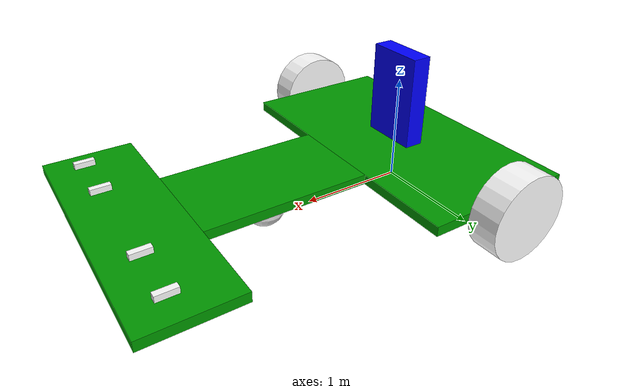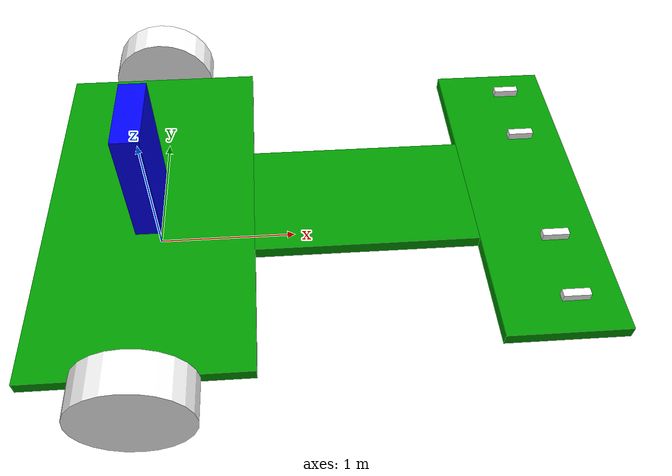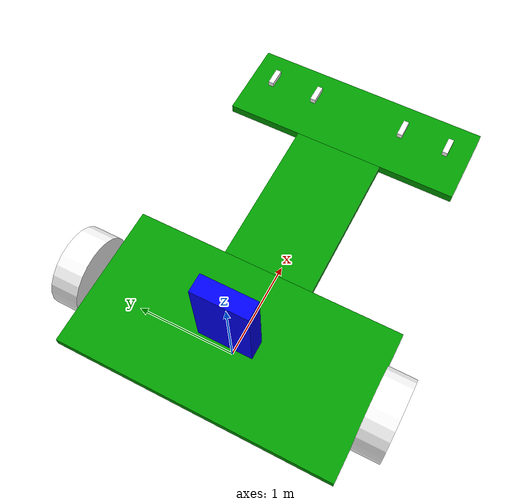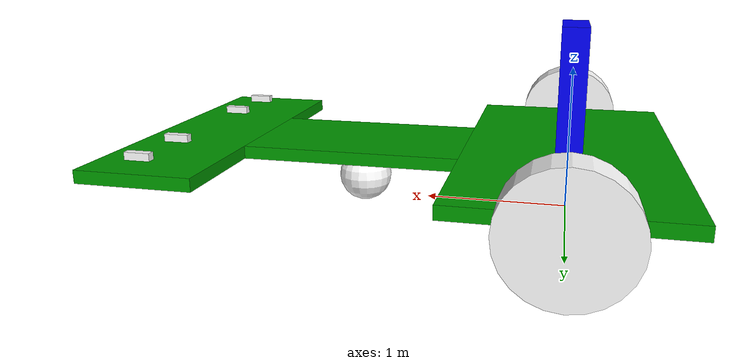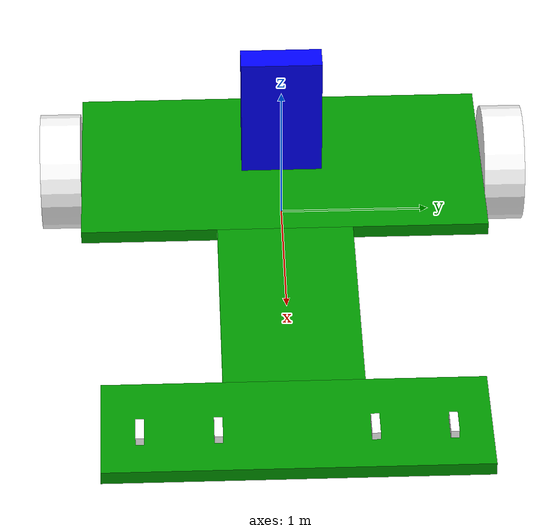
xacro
<?xml version="1.0"?>
<robot name="FLF" xmlns:xacro="http://www.ros.org/wiki/xacro">
<!-- Scaling Factor -->
<xacro:property name="scale" value="0.18"/>
<material name="grey">
<color rgba="0.7 0.7 0.7 1"/>
</material>
<material name="green">
<color rgba="0 0.6 0.0 1"/>
</material>
<material name="white">
<color rgba="1 1 1 1"/>
</material>

<!-- Base Footprint Link -->
<link name="base_footprint" />
<!-- Base Link -->
<link name="base_link">
<visual>
<geometry>
<box size="${8 * scale} ${15 * scale} ${0.5 * scale}"/>
</geometry>
<origin xyz="0 0 0" rpy="0 0 0"/>
<material name="green"/>
</visual>
<collision>
<geometry>
<box size="${8 * scale} ${15 * scale} ${0.5 * scale}"/>
</geometry>
<origin xyz="0 0 0" rpy="0 0 0"/>
</collision>
<inertial>
<mass value="2.0"/>
<origin xyz="0 0 0" rpy="0 0 0"/>
<inertia
  ixx="0.01" ixy="0.0" ixz="0.0"
  iyy="0.01" iyz="0.0"
  izz="0.01"/>
</inertial>
</link>
<!-- test -->
  <link name="test_link">
    <visual>
      <geometry>
        <box size="${1*scale} ${3*scale} ${5*scale}"/>
      </geometry>
      <material name="blue">
        <color rgba="0 0 1 1"/>
      </material>
    </visual>
  </link>
<!-- test -->
<!-- Neck Link -->
<link name="neck_link">
<visual>
<geometry>
<box size="${8.5 * scale} ${5 * scale} ${0.5 * scale}"/>
</geometry>
<origin xyz="0 0 0" rpy="0 0 0"/>
<material name="green"/>
</visual>
<collision>
<geometry>
<box size="${8.5 * scale} ${5 * scale} ${0.5 * scale}"/>
</geometry>
<origin xyz="0 0 0" rpy="0 0 0"/>
</collision>
<inertial>
<mass value="2.0"/>
<origin xyz="0 0 0" rpy="0 0 0"/>
<inertia
  ixx="0.01" ixy="0.0" ixz="0.0"
  iyy="0.01" iyz="0.0"
  izz="0.01"/>
</inertial>
</link>
<!-- IR Sensor Link -->
<link name="ir_link">
<visual>
<geometry>
<box size="${4.5 * scale} ${13.5 * scale} ${0.5 * scale}"/>
</geometry>
<origin xyz="0 0 0" rpy="0 0 0"/>
<material name="green"/>
</visual>
<collision>
<geometry>
<box size="${4.5 * scale} ${13.5 * scale} ${0.5 * scale}"/>
</geometry>
<origin xyz="0 0 0" rpy="0 0 0"/>
</collision>
<inertial>
<mass value="2.0"/>
<origin xyz="0 0 0" rpy="0 0 0"/>
<inertia
  ixx="0.01" ixy="0.0" ixz="0.0"
  iyy="0.01" iyz="0.0"
  izz="0.01"/>
</inertial>
</link>
<!-- IR Sensor 1 -->
<link name="ir_sensor_1">
    <visual>
        <geometry>
            <box size="${1.0 * scale} ${0.3 * scale} ${0.3 * scale}"/>
        </geometry>
        <origin xyz="${0.0 * scale} 0 0" rpy="0 0 0"/>
        <material name="white"/>
    </visual>
    <collision>
        <geometry>
            <box size="${1.0 * scale} ${0.3 * scale} ${0.3 * scale}"/>
        </geometry>
        <origin xyz="${0.5 * scale} 0 0" rpy="0 0 0"/>
    </collision>
    <inertial>
        <mass value="0.1"/>
        <origin xyz="0 0 0"/>
        <inertia ixx="0.0001" ixy="0" ixz="0" iyy="0.0001" iyz="0" izz="0.0001"/>
    </inertial>
</link>
<link name="ir_sensor_2">
    <visual>
        <geometry>
            <box size="${1.0 * scale} ${0.3 * scale} ${0.3 * scale}"/>
        </geometry>
        <origin xyz="${0.0 * scale} 0 ${0.5 * scale}" rpy="0 0 0"/>
        <material name="white"/>
    </visual>
    <collision>
        <geometry>
            <box size="${1.0 * scale} ${0.3 * scale} ${0.3 * scale}"/>
        </geometry>
        <origin xyz="0 0 0" rpy="0 0 0"/>
    </collision>
    <inertial>
        <mass value="0.1"/>
        <origin xyz="0 0 0"/>
        <inertia ixx="0.0001" ixy="0" ixz="0" iyy="0.0001" iyz="0" izz="0.0001"/>
    </inertial>
</link>
<link name="ir_sensor_3">
    <visual>
        <geometry>
            <box size="${1.0 * scale} ${0.3 * scale} ${0.3 * scale}"/>
        </geometry>
        <origin xyz="${0.0 * scale} 0 ${0.5 * scale}" rpy="0 0 0"/>
        <material name="white"/>
    </visual>
    <collision>
        <geometry>
            <box size="${1.0 * scale} ${0.3 * scale} ${0.3 * scale}"/>
        </geometry>
        <origin xyz="0 0 0" rpy="0 0 0"/>
    </collision>
    <inertial>
        <mass value="0.1"/>
        <origin xyz="0 0 0"/>
        <inertia ixx="0.0001" ixy="0" ixz="0" iyy="0.0001" iyz="0" izz="0.0001"/>
    </inertial>
</link>
<link name="ir_sensor_4">
    <visual>
        <geometry>
            <box size="${1.0 * scale} ${0.3 * scale} ${0.3 * scale}"/>
        </geometry>
        <origin xyz="${0.0 * scale} 0 ${0.5 * scale}" rpy="0 0 0"/>
        <material name="white"/>
    </visual>
    <collision>
        <geometry>
            <box size="${1.0 * scale} ${0.3 * scale} ${0.3 * scale}"/>
        </geometry>
        <origin xyz="0 0 0" rpy="0 0 0"/>
    </collision>
    <inertial>
        <mass value="0.1"/>
        <origin xyz="0 0 0"/>
        <inertia ixx="0.0001" ixy="0" ixz="0" iyy="0.0001" iyz="0" izz="0.0001"/>
    </inertial>
</link>
<link name="ir_sensor_5">
    <visual>
        <geometry>
            <box size="${1.0 * scale} ${0.3 * scale} ${0.3 * scale}"/>
        </geometry>
        <origin xyz="${0.0 * scale} 0 ${0.5 * scale}" rpy="0 0 0"/>
        <material name="white"/>
    </visual>
    <collision>
        <geometry>
            <box size="${1.0 * scale} ${0.3 * scale} ${0.3 * scale}"/>
        </geometry>
        <origin xyz="0 0 0" rpy="0 0 0"/>
    </collision>
    <inertial>
        <mass value="0.1"/>
        <origin xyz="0 0 0"/>
        <inertia ixx="0.0001" ixy="0" ixz="0" iyy="0.0001" iyz="0" izz="0.0001"/>
    </inertial>
</link>

<!-- Left Wheel -->
<link name="left_wheel">
<visual>
<geometry>
<cylinder radius="${2.15 * scale}" length="${1.5 * scale}"/>
</geometry>
<origin xyz="0 0 0" rpy="0 0 0"/>
<material name="white"/>
</visual>
<collision>
<geometry>
<cylinder radius="${2.15 * scale}" length="${1.5 * scale}"/>
</geometry>
<origin xyz="0 0 0" rpy="0 0 0"/>
</collision>
<inertial>
<mass value="0.1"/>
<origin xyz="0 0 0" rpy="0 0 0"/>
<inertia
  ixx="0.00001" ixy="0.0" ixz="0.0"
  iyy="0.00001" iyz="0.0"
  izz="0.00002"/>
</inertial>
</link>
<!-- Right Wheel -->
<link name="right_wheel">
<visual>
<geometry>
<cylinder radius="${2.15 * scale}" length="${1.5 * scale}"/>
</geometry>
<origin xyz="0 0 0" rpy="0 0 0"/>
<material name="white"/>
</visual>
<collision>
<geometry>
<cylinder radius="${2.15 * scale}" length="${1.5 * scale}"/>
</geometry>
<origin xyz="0 0 0" rpy="0 0 0"/>
</collision>
<inertial>
<mass value="0.1"/>
<origin xyz="0 0 0" rpy="0 0 0"/>
<inertia
  ixx="0.00001" ixy="0.0" ixz="0.0"
  iyy="0.00001" iyz="0.0"
  izz="0.00002"/>
</inertial>
</link>
<link name="caster_wheel">
    <visual>
        <geometry>
            <sphere radius="${1.075*scale}"/> <!-- Radius = 1.075, so diameter = 2.15 -->
        </geometry>
        <material name="white"/>
    </visual>
    <collision>
        <geometry>
            <sphere radius="${1.075*scale}"/>
        </geometry>
    </collision>
    <inertial>
        <mass value="0.0"/>
        <origin xyz="0 0 0"/>
        <inertia ixx="0.001" iyy="0.001" izz="0.001" ixy="0" ixz="0" iyz="0"/>
    </inertial>
</link>
<!-- Joints -->
<joint name="base_footprint_joint" type="fixed">
<parent link="base_footprint"/>
<child link="base_link"/>
<origin xyz="0 0 ${2.15 * scale}" rpy="0 0 0"/>
</joint>
<joint name="base_neck_joint" type="fixed">
<parent link="base_link"/>
<child link="neck_link"/>
<origin xyz="${8.25 * scale} 0 0" rpy="0 0 0"/>
</joint>
<joint name="base_ir_joint" type="fixed">
<parent link="base_link"/>
<child link="ir_link"/>
<origin xyz="${14.75 * scale} 0 0" rpy="0 0 0"/>
</joint>
<joint name="base_left_wheel_joint" type="continuous">
  <parent link="base_link"/>
  <child link="left_wheel"/>
  <origin xyz="0 ${(8.25 * scale)} 0" rpy="${-pi/2} 0 0"/>
  <axis xyz="0 0 1"/>
    <dynamics damping="0.5" friction="0.5"/>
</joint>

<joint name="base_right_wheel_joint" type="continuous">
  <parent link="base_link"/>
  <child link="right_wheel"/>
  <origin xyz="0 ${(-8.25 * scale)} 0" rpy="${-pi/2} 0 0"/>
  <axis xyz="0 0 1"/>
    <dynamics damping="0.5" friction="0.5"/>
</joint>
<!-- Joint to Attach Caster to Neck -->
<joint name="caster_joint" type="fixed">
    <parent link="neck_link"/>
    <child link="caster_wheel"/>
    <origin xyz="0 0 ${-1.35*scale}" rpy="0 0 0"/> <!-- Places caster exactly on the ground -->
</joint>
<joint name="ir_sensor_1_joint" type="fixed">
    <parent link="ir_link"/>
    <child link="ir_sensor_1"/>
    <origin xyz="${0.5 * scale} 0 ${-0.40 * scale}" rpy="0 0 0"/></joint>
<joint name="ir_sensor_2_joint" type="fixed">
    <parent link="ir_link"/>
    <child link="ir_sensor_2"/>
    <origin xyz="${0.5 * scale} ${2.7 * scale} ${-0 * scale}" rpy="0 0 0"/></joint>
<joint name="ir_sensor_3_joint" type="fixed">
    <parent link="ir_link"/>
    <child link="ir_sensor_3"/>
    <origin xyz="${0.5 * scale} ${2 * 2.7 * scale} ${-0 * scale}" rpy="0 0 0"/></joint>
<joint name="ir_sensor_4_joint" type="fixed">
    <parent link="ir_link"/>
    <child link="ir_sensor_4"/>
    <origin xyz="${0.5 * scale} ${-2.7 * scale} ${-0 * scale}" rpy="0 0 0"/></joint>
<joint name="ir_sensor_5_joint" type="fixed">
    <parent link="ir_link"/>
    <child link="ir_sensor_5"/>
    <origin xyz="${0.5 * scale} ${2 * -2.7 * scale} ${-0 * scale}" rpy="0 0 0"/></joint>

<!--test joiont -->
  <joint name="test_joint" type="fixed">
    <parent link="base_link"/>
    <child link="test_link"/>
    <origin xyz="0 0 ${2.57*scale}" rpy="0 0 0"/>
  </joint>

<!--test joiont -->

<!-- Gazebo specific elements -->
<gazebo reference="left_wheel">
  <mu1>1.0</mu1>
  <mu2>1.0</mu2>
  <kp>1000.0</kp>
  <kd>100.0</kd>
</gazebo>

<gazebo reference="right_wheel">
  <mu1>1.0</mu1>
  <mu2>1.0</mu2>
  <kp>1000.0</kp>
  <kd>100.0</kd>
</gazebo>

<!-- IR sensor plugins -->
<!--test pugin-->
  <gazebo reference="test_link">
    <sensor type="ray" name="test_sensor">
      <update_rate>30</update_rate>
      <visualize>true</visualize>
      <ray>
        <scan>
          <horizontal>
            <samples>10</samples>
            <resolution>1</resolution>
            <min_angle>-0.1</min_angle>
            <max_angle>0.1</max_angle>
          </horizontal>
        </scan>
        <range>
          <min>0.01</min>
          <max>1.0</max>
          <resolution>0.01</resolution>
        </range>
      </ray>
      <plugin name="sensor_plugin" filename="libgazebo_ros_laser.so">
        <topicName>test_sensor</topicName>
        <frameName>sensor_link</frameName>
      </plugin>
    </sensor>
  </gazebo>
<!--test pugin-->
</robot>
